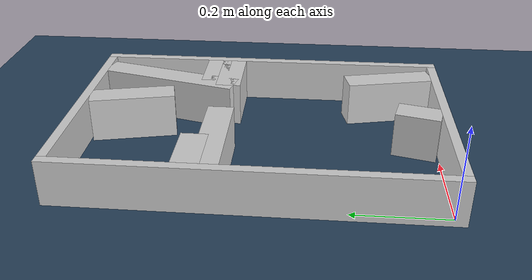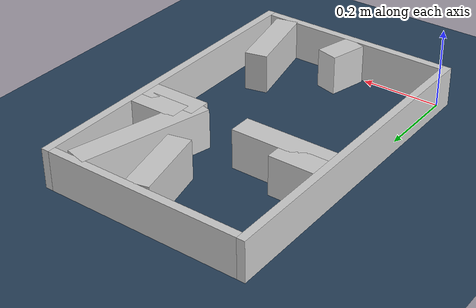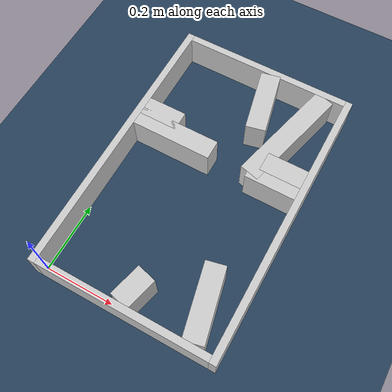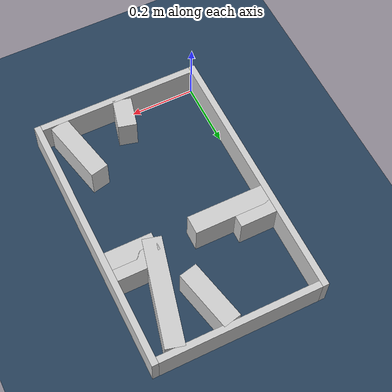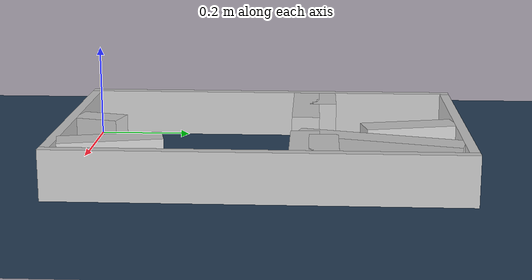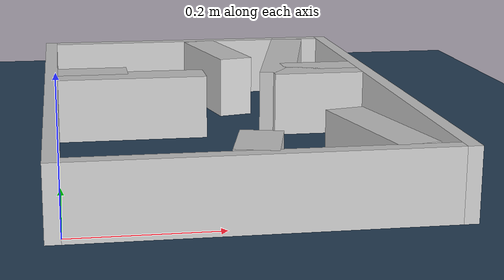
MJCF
<?xml version="1.0" ?>
<mujoco model="generated_real_template">
  <compiler angle="degree"/>
  <option timestep="0.002" integrator="implicitfast" iterations="100" cone="elliptic"/>
  <default>
    <geom density="1"/>
  </default>
  <asset>
    <texture builtin="gradient" height="3072" rgb1="0.3 0.5 0.7" rgb2="0 0 0" type="skybox" width="512"/>
    <texture builtin="checker" height="300" mark="edge" markrgb="0.8 0.8 0.8" name="groundplane" rgb1="0.2 0.3 0.4" rgb2="0.1 0.2 0.3" type="2d" width="300"/>
    <material name="groundplane" reflectance="0.2" texrepeat="5 5" texture="groundplane" texuniform="true"/>
  </asset>
  <worldbody>
    <light dir="0 0 -1" directional="true" pos="0 0 1.5"/>
    <geom name="floor" type="plane" condim="4" friction="0.5 0.005 0.001" material="groundplane" size="0 0 0.05"/>
    <body name="walls">
      <geom name="wall_boundary_left" type="box" condim="4" friction="1.0 0.005 0.0001" rgba="0.8 0.8 0.8 1" pos="-0.010000 0.387500 0.050000" euler="0 0 0.000000" size="0.010000 0.407500 0.050000"/>
      <geom name="wall_boundary_right" type="box" condim="4" friction="1.0 0.005 0.0001" rgba="0.8 0.8 0.8 1" pos="0.500000 0.387500 0.050000" euler="0 0 0.000000" size="0.010000 0.407500 0.050000"/>
      <geom name="wall_boundary_bottom" type="box" condim="4" friction="1.0 0.005 0.0001" rgba="0.8 0.8 0.8 1" pos="0.245000 -0.010000 0.050000" euler="0 0 0.000000" size="0.245000 0.010000 0.050000"/>
      <geom name="wall_boundary_top" type="box" condim="4" friction="1.0 0.005 0.0001" rgba="0.8 0.8 0.8 1" pos="0.245000 0.785000 0.050000" euler="0 0 0.000000" size="0.245000 0.010000 0.050000"/>
      <geom name="wall_inner_1_1" type="box" condim="4" friction="1.0 0.005 0.0001" rgba="0.8 0.8 0.8 1" pos="0.056096 0.509844 0.050000" euler="0 0 0.000000" size="0.056096 0.028500 0.050000"/>
      <geom name="wall_inner_1_2" type="box" condim="4" friction="1.0 0.005 0.0001" rgba="0.8 0.8 0.8 1" pos="0.430566 0.509844 0.050000" euler="0 0 0.000000" size="0.059434 0.028500 0.050000"/>
      <geom name="wall_inner_2_1" type="box" condim="4" friction="1.0 0.005 0.0001" rgba="0.8 0.8 0.8 1" pos="0.117263 0.473295 0.050000" euler="0 0 0.000000" size="0.117263 0.028500 0.050000"/>
      <geom name="wall_inner_2_2" type="box" condim="4" friction="1.0 0.005 0.0001" rgba="0.8 0.8 0.8 1" pos="0.417801 0.473295 0.050000" euler="0 0 0.000000" size="0.072199 0.028500 0.050000"/>
      <geom name="wall_inner_3_1" type="box" condim="4" friction="1.0 0.005 0.0001" rgba="0.8 0.8 0.8 1" pos="0.392202 0.616986 0.050000" euler="0 0 -104.397803" size="0.163137 0.028500 0.050000"/>
      <geom name="wall_inner_3_2" type="box" condim="4" friction="1.0 0.005 0.0001" rgba="0.8 0.8 0.8 1" pos="0.245767 0.046571 0.050000" euler="0 0 -104.397803" size="0.048081 0.028500 0.050000"/>
      <geom name="wall_inner_4_1" type="box" condim="4" friction="1.0 0.005 0.0001" rgba="0.8 0.8 0.8 1" pos="0.284363 0.682777 0.050000" euler="0 0 -77.319791" size="0.094528 0.028500 0.050000"/>
      <geom name="wall_inner_4_2" type="box" condim="4" friction="1.0 0.005 0.0001" rgba="0.8 0.8 0.8 1" pos="0.415744 0.098852 0.050000" euler="0 0 -77.319791" size="0.101323 0.028500 0.050000"/>
    </body>
  </worldbody>
</mujoco>
